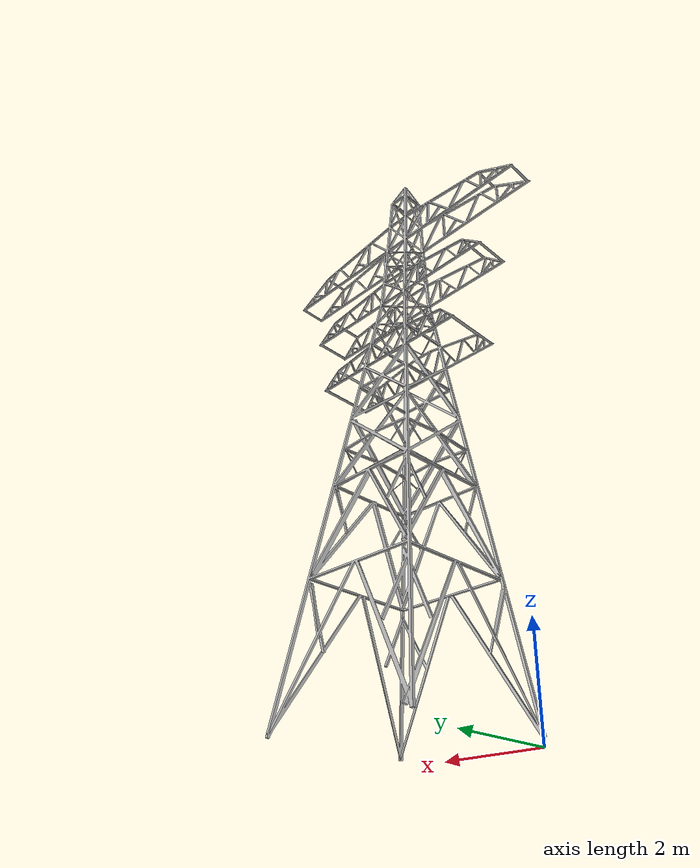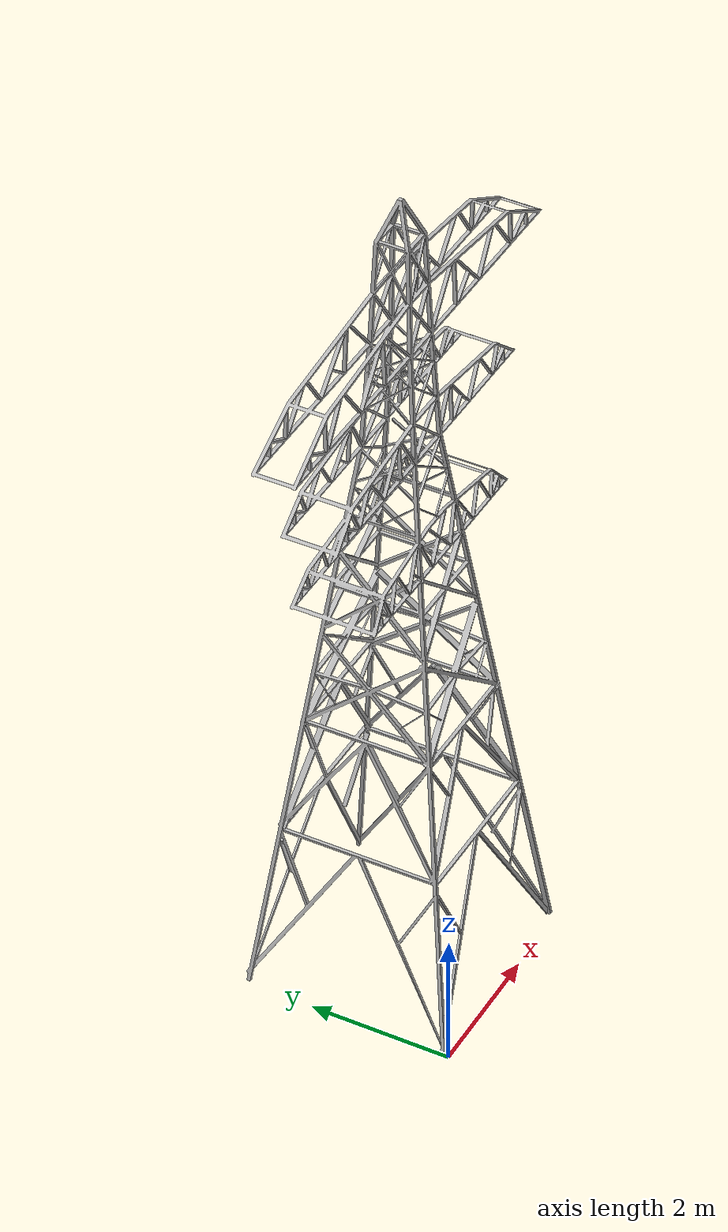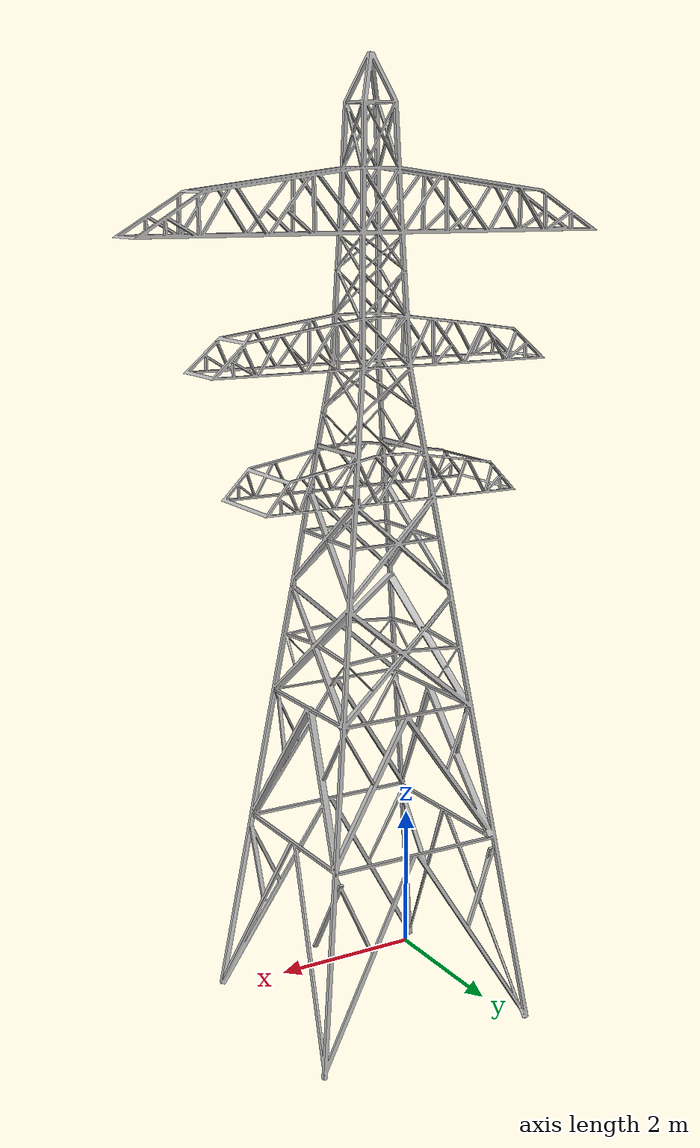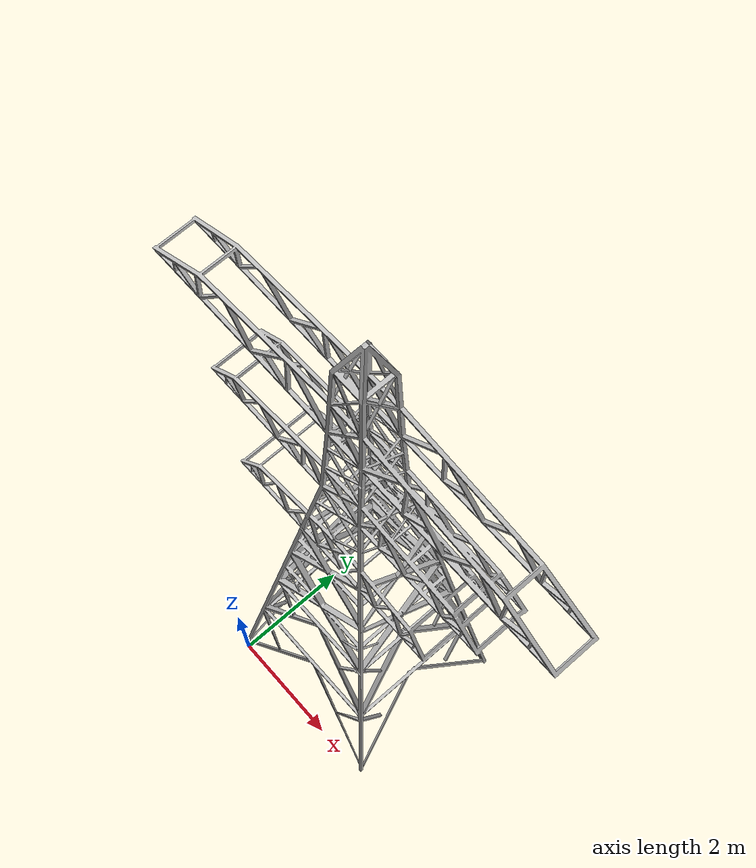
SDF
<?xml version="1.0" ?>
<sdf version="1.6">
  <model name="torrona">
    <static>true</static>
    <link name="link">
      <collision name="collision">
        <geometry>
          <mesh>
            <scale>0.1 0.1 0.1</scale>
            <uri>model://torrona/meshes/torrona.stl</uri>
          </mesh>
        </geometry>
      </collision>

      <visual name="visual">
        <geometry>
          <mesh>
            <scale>0.1 0.1 0.1</scale>
            <uri>model://torrona/meshes/torrona.stl</uri>
          </mesh>
        </geometry>
      </visual>
    </link>
  </model>
</sdf>
